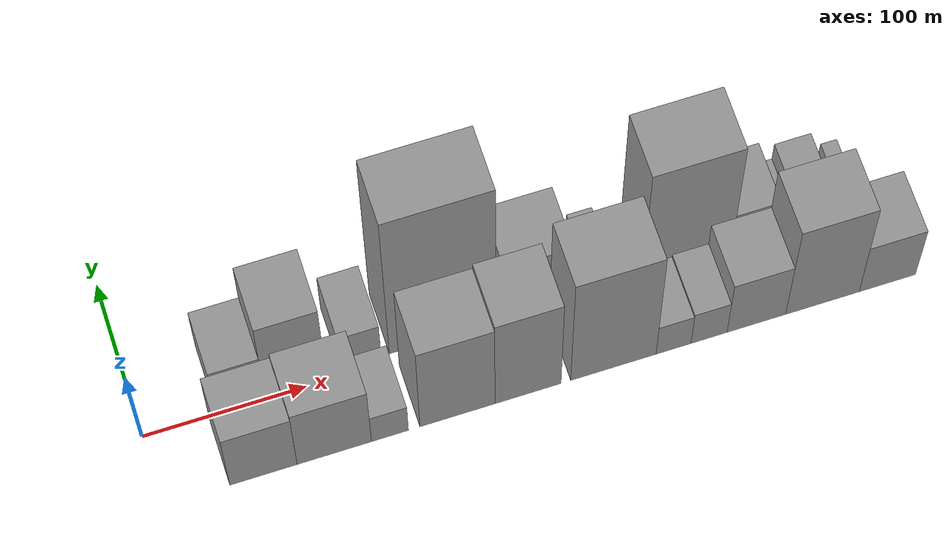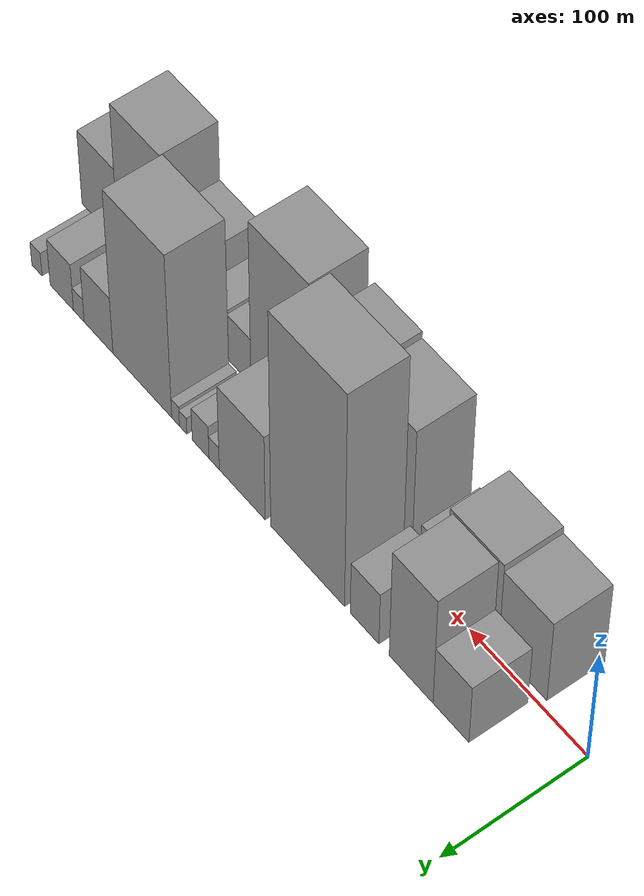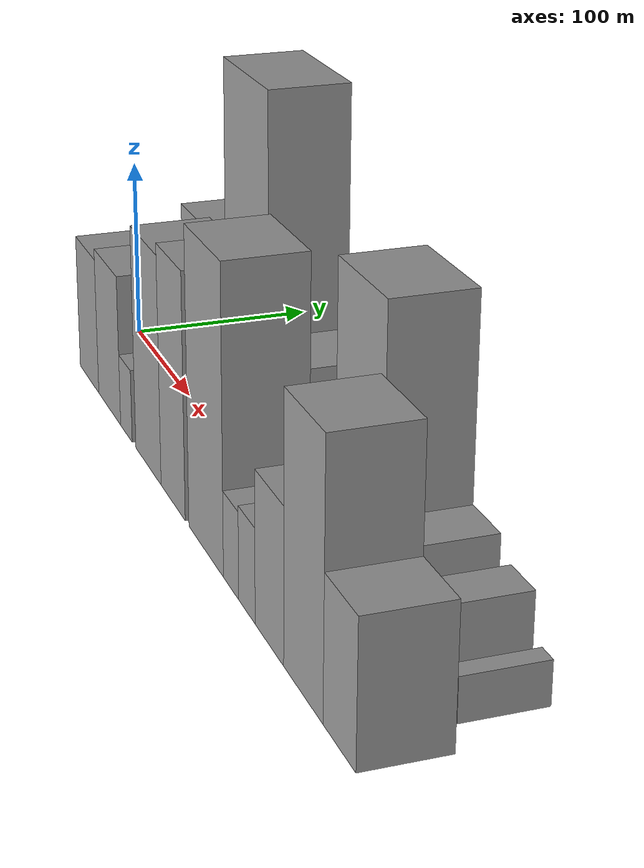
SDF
<sdf version="1.6">
 <world name="default">
  <scene>
   <sky><clouds><speed>12</speed></clouds></sky>
   <ambient>0.4 0.4 0.4 1</ambient>
   <background>0.7 0.7 0.7 1</background>
   <shadows>1</shadows>
  </scene>
  <gravity>0 0 -9.8066</gravity>
  <magnetic_field>6e-06 2.3e-05 -4.2e-05</magnetic_field>
  <physics default="0" name="default_physics" type="ode">
   <ode>
    <solver>
     <type>quick</type>
     <iters>10</iters>
     <sor>1.0</sor>
     <use_dynamic_moi_rescaling>0</use_dynamic_moi_rescaling>
    </solver>
    <constraints>
     <cfm>0</cfm>
     <erp>0.2</erp>
     <contact_max_correcting_vel>100</contact_max_correcting_vel>
     <contact_surface_layer>0.001</contact_surface_layer>
    </constraints>
   </ode>
   <max_step_size>0.004</max_step_size>
   <real_time_factor>1</real_time_factor>
   <real_time_update_rate>250</real_time_update_rate>
  </physics>
  <light name="sun" type="directional">
   <pose>0 0 10 0 0 0</pose>
   <diffuse>0.8 0.8 0.8 1</diffuse>
   <specular>0.2 0.2 0.2 1</specular>
   <attenuation>
    <range>1000</range>
    <constant>0.9</constant>
    <linear>0.01</linear>
    <quadratic>0.001</quadratic>
   </attenuation>
   <direction>-0.5 0.1 -0.9</direction>
  </light>
  <model name="building_1">
   <static>1</static>
   <pose>60.2377 24.5000 0 0.000000 0.000000 1.570796</pose>
   <link name="link">
    <pose>0 0 27.00 0 0 0</pose>
    <collision name="collision"><geometry><box><size>40.0000 30.4754 54.0000</size></box></geometry></collision>
    <visual name="visual">
     <cast_shadows>0</cast_shadows>
     <geometry><box><size>40.0000 30.4754 54.0000</size></box></geometry>
     <material>
      <script>
       <uri>model://grey_wall/materials/scripts</uri>
       <uri>model://grey_wall/materials/textures</uri>
       <name>vrc/grey_wall</name>
      </script>
     </material>
    </visual>
   </link>
  </model>
  <model name="building_2">
   <static>1</static>
   <pose>94.3330 24.5000 0 0.000000 0.000000 1.570796</pose>
   <link name="link">
    <pose>0 0 49.50 0 0 0</pose>
    <collision name="collision"><geometry><box><size>40.0000 37.7152 99.0000</size></box></geometry></collision>
    <visual name="visual">
     <cast_shadows>0</cast_shadows>
     <geometry><box><size>40.0000 37.7152 99.0000</size></box></geometry>
     <material>
      <script>
       <uri>model://grey_wall/materials/scripts</uri>
       <uri>model://grey_wall/materials/textures</uri>
       <name>vrc/grey_wall</name>
      </script>
     </material>
    </visual>
   </link>
  </model>
  <model name="building_3">
   <static>1</static>
   <pose>134.7354 24.5000 0 0.000000 0.000000 1.570796</pose>
   <link name="link">
    <pose>0 0 24.00 0 0 0</pose>
    <collision name="collision"><geometry><box><size>40.0000 25.0895 48.0000</size></box></geometry></collision>
    <visual name="visual">
     <cast_shadows>0</cast_shadows>
     <geometry><box><size>40.0000 25.0895 48.0000</size></box></geometry>
     <material>
      <script>
       <uri>model://grey_wall/materials/scripts</uri>
       <uri>model://grey_wall/materials/textures</uri>
       <name>vrc/grey_wall</name>
      </script>
     </material>
    </visual>
   </link>
  </model>
  <model name="building_4">
   <static>1</static>
   <pose>185.3391 24.5000 0 0.000000 0.000000 1.570796</pose>
   <link name="link">
    <pose>0 0 97.50 0 0 0</pose>
    <collision name="collision"><geometry><box><size>40.0000 66.1177 195.0000</size></box></geometry></collision>
    <visual name="visual">
     <cast_shadows>0</cast_shadows>
     <geometry><box><size>40.0000 66.1177 195.0000</size></box></geometry>
     <material>
      <script>
       <uri>model://grey_wall/materials/scripts</uri>
       <uri>model://grey_wall/materials/textures</uri>
       <name>vrc/grey_wall</name>
      </script>
     </material>
    </visual>
   </link>
  </model>
  <model name="building_5">
   <static>1</static>
   <pose>244.4486 24.5000 0 0.000000 0.000000 1.570796</pose>
   <link name="link">
    <pose>0 0 39.00 0 0 0</pose>
    <collision name="collision"><geometry><box><size>40.0000 42.1014 78.0000</size></box></geometry></collision>
    <visual name="visual">
     <cast_shadows>0</cast_shadows>
     <geometry><box><size>40.0000 42.1014 78.0000</size></box></geometry>
     <material>
      <script>
       <uri>model://grey_wall/materials/scripts</uri>
       <uri>model://grey_wall/materials/textures</uri>
       <name>vrc/grey_wall</name>
      </script>
     </material>
    </visual>
   </link>
  </model>
  <model name="building_6">
   <static>1</static>
   <pose>270.3058 24.5000 0 0.000000 0.000000 1.570796</pose>
   <link name="link">
    <pose>0 0 10.50 0 0 0</pose>
    <collision name="collision"><geometry><box><size>40.0000 9.6129 21.0000</size></box></geometry></collision>
    <visual name="visual">
     <cast_shadows>0</cast_shadows>
     <geometry><box><size>40.0000 9.6129 21.0000</size></box></geometry>
     <material>
      <script>
       <uri>model://grey_wall/materials/scripts</uri>
       <uri>model://grey_wall/materials/textures</uri>
       <name>vrc/grey_wall</name>
      </script>
     </material>
    </visual>
   </link>
  </model>
  <model name="building_7">
   <static>1</static>
   <pose>282.9317 24.5000 0 0.000000 0.000000 1.570796</pose>
   <link name="link">
    <pose>0 0 15.00 0 0 0</pose>
    <collision name="collision"><geometry><box><size>40.0000 15.6388 30.0000</size></box></geometry></collision>
    <visual name="visual">
     <cast_shadows>0</cast_shadows>
     <geometry><box><size>40.0000 15.6388 30.0000</size></box></geometry>
     <material>
      <script>
       <uri>model://grey_wall/materials/scripts</uri>
       <uri>model://grey_wall/materials/textures</uri>
       <name>vrc/grey_wall</name>
      </script>
     </material>
    </visual>
   </link>
  </model>
  <model name="building_8">
   <static>1</static>
   <pose>299.2666 24.5000 0 0.000000 0.000000 1.570796</pose>
   <link name="link">
    <pose>0 0 7.50 0 0 0</pose>
    <collision name="collision"><geometry><box><size>40.0000 7.0310 15.0000</size></box></geometry></collision>
    <visual name="visual">
     <cast_shadows>0</cast_shadows>
     <geometry><box><size>40.0000 7.0310 15.0000</size></box></geometry>
     <material>
      <script>
       <uri>model://grey_wall/materials/scripts</uri>
       <uri>model://grey_wall/materials/textures</uri>
       <name>vrc/grey_wall</name>
      </script>
     </material>
    </visual>
   </link>
  </model>
  <model name="building_9">
   <static>1</static>
   <pose>306.3951 24.5000 0 0.000000 0.000000 1.570796</pose>
   <link name="link">
    <pose>0 0 9.00 0 0 0</pose>
    <collision name="collision"><geometry><box><size>40.0000 7.2258 18.0000</size></box></geometry></collision>
    <visual name="visual">
     <cast_shadows>0</cast_shadows>
     <geometry><box><size>40.0000 7.2258 18.0000</size></box></geometry>
     <material>
      <script>
       <uri>model://grey_wall/materials/scripts</uri>
       <uri>model://grey_wall/materials/textures</uri>
       <name>vrc/grey_wall</name>
      </script>
     </material>
    </visual>
   </link>
  </model>
  <model name="building_10">
   <static>1</static>
   <pose>338.0191 24.5000 0 0.000000 0.000000 1.570796</pose>
   <link name="link">
    <pose>0 0 73.50 0 0 0</pose>
    <collision name="collision"><geometry><box><size>40.0000 56.0221 147.0000</size></box></geometry></collision>
    <visual name="visual">
     <cast_shadows>0</cast_shadows>
     <geometry><box><size>40.0000 56.0221 147.0000</size></box></geometry>
     <material>
      <script>
       <uri>model://grey_wall/materials/scripts</uri>
       <uri>model://grey_wall/materials/textures</uri>
       <name>vrc/grey_wall</name>
      </script>
     </material>
    </visual>
   </link>
  </model>
  <model name="building_11">
   <static>1</static>
   <pose>379.9936 24.5000 0 0.000000 0.000000 1.570796</pose>
   <link name="link">
    <pose>0 0 25.50 0 0 0</pose>
    <collision name="collision"><geometry><box><size>40.0000 27.9270 51.0000</size></box></geometry></collision>
    <visual name="visual">
     <cast_shadows>0</cast_shadows>
     <geometry><box><size>40.0000 27.9270 51.0000</size></box></geometry>
     <material>
      <script>
       <uri>model://grey_wall/materials/scripts</uri>
       <uri>model://grey_wall/materials/textures</uri>
       <name>vrc/grey_wall</name>
      </script>
     </material>
    </visual>
   </link>
  </model>
  <model name="building_12">
   <static>1</static>
   <pose>399.2017 24.5000 0 0.000000 0.000000 1.570796</pose>
   <link name="link">
    <pose>0 0 10.50 0 0 0</pose>
    <collision name="collision"><geometry><box><size>40.0000 10.4891 21.0000</size></box></geometry></collision>
    <visual name="visual">
     <cast_shadows>0</cast_shadows>
     <geometry><box><size>40.0000 10.4891 21.0000</size></box></geometry>
     <material>
      <script>
       <uri>model://grey_wall/materials/scripts</uri>
       <uri>model://grey_wall/materials/textures</uri>
       <name>vrc/grey_wall</name>
      </script>
     </material>
    </visual>
   </link>
  </model>
  <model name="building_13">
   <static>1</static>
   <pose>415.9238 24.5000 0 0.000000 0.000000 1.570796</pose>
   <link name="link">
    <pose>0 0 21.00 0 0 0</pose>
    <collision name="collision"><geometry><box><size>40.0000 22.9552 42.0000</size></box></geometry></collision>
    <visual name="visual">
     <cast_shadows>0</cast_shadows>
     <geometry><box><size>40.0000 22.9552 42.0000</size></box></geometry>
     <material>
      <script>
       <uri>model://grey_wall/materials/scripts</uri>
       <uri>model://grey_wall/materials/textures</uri>
       <name>vrc/grey_wall</name>
      </script>
     </material>
    </visual>
   </link>
  </model>
  <model name="building_14">
   <static>1</static>
   <pose>440.4947 24.5000 0 0.000000 0.000000 1.570796</pose>
   <link name="link">
    <pose>0 0 10.50 0 0 0</pose>
    <collision name="collision"><geometry><box><size>40.0000 10.1867 21.0000</size></box></geometry></collision>
    <visual name="visual">
     <cast_shadows>0</cast_shadows>
     <geometry><box><size>40.0000 10.1867 21.0000</size></box></geometry>
     <material>
      <script>
       <uri>model://grey_wall/materials/scripts</uri>
       <uri>model://grey_wall/materials/textures</uri>
       <name>vrc/grey_wall</name>
      </script>
     </material>
    </visual>
   </link>
  </model>
  <model name="building_15">
   <static>1</static>
   <pose>60.3932 -24.5000 0 0.000000 0.000000 1.570796</pose>
   <link name="link">
    <pose>0 0 37.50 0 0 0</pose>
    <collision name="collision"><geometry><box><size>40.0000 40.7864 75.0000</size></box></geometry></collision>
    <visual name="visual">
     <cast_shadows>0</cast_shadows>
     <geometry><box><size>40.0000 40.7864 75.0000</size></box></geometry>
     <material>
      <script>
       <uri>model://grey_wall/materials/scripts</uri>
       <uri>model://grey_wall/materials/textures</uri>
       <name>vrc/grey_wall</name>
      </script>
     </material>
    </visual>
   </link>
  </model>
  <model name="building_16">
   <static>1</static>
   <pose>103.4413 -24.5000 0 0.000000 0.000000 1.570796</pose>
   <link name="link">
    <pose>0 0 40.50 0 0 0</pose>
    <collision name="collision"><geometry><box><size>40.0000 45.3098 81.0000</size></box></geometry></collision>
    <visual name="visual">
     <cast_shadows>0</cast_shadows>
     <geometry><box><size>40.0000 45.3098 81.0000</size></box></geometry>
     <material>
      <script>
       <uri>model://grey_wall/materials/scripts</uri>
       <uri>model://grey_wall/materials/textures</uri>
       <name>vrc/grey_wall</name>
      </script>
     </material>
    </visual>
   </link>
  </model>
  <model name="building_17">
   <static>1</static>
   <pose>137.3759 -24.5000 0 0.000000 0.000000 1.570796</pose>
   <link name="link">
    <pose>0 0 19.50 0 0 0</pose>
    <collision name="collision"><geometry><box><size>40.0000 22.5594 39.0000</size></box></geometry></collision>
    <visual name="visual">
     <cast_shadows>0</cast_shadows>
     <geometry><box><size>40.0000 22.5594 39.0000</size></box></geometry>
     <material>
      <script>
       <uri>model://grey_wall/materials/scripts</uri>
       <uri>model://grey_wall/materials/textures</uri>
       <name>vrc/grey_wall</name>
      </script>
     </material>
    </visual>
   </link>
  </model>
  <model name="building_18">
   <static>1</static>
   <pose>178.7243 -24.5000 0 0.000000 0.000000 1.570796</pose>
   <link name="link">
    <pose>0 0 58.50 0 0 0</pose>
    <collision name="collision"><geometry><box><size>40.0000 46.1374 117.0000</size></box></geometry></collision>
    <visual name="visual">
     <cast_shadows>0</cast_shadows>
     <geometry><box><size>40.0000 46.1374 117.0000</size></box></geometry>
     <material>
      <script>
       <uri>model://grey_wall/materials/scripts</uri>
       <uri>model://grey_wall/materials/textures</uri>
       <name>vrc/grey_wall</name>
      </script>
     </material>
    </visual>
   </link>
  </model>
  <model name="building_19">
   <static>1</static>
   <pose>222.1818 -24.5000 0 0.000000 0.000000 1.570796</pose>
   <link name="link">
    <pose>0 0 61.50 0 0 0</pose>
    <collision name="collision"><geometry><box><size>40.0000 40.7775 123.0000</size></box></geometry></collision>
    <visual name="visual">
     <cast_shadows>0</cast_shadows>
     <geometry><box><size>40.0000 40.7775 123.0000</size></box></geometry>
     <material>
      <script>
       <uri>model://grey_wall/materials/scripts</uri>
       <uri>model://grey_wall/materials/textures</uri>
       <name>vrc/grey_wall</name>
      </script>
     </material>
    </visual>
   </link>
  </model>
  <model name="building_20">
   <static>1</static>
   <pose>275.0871 -24.5000 0 0.000000 0.000000 1.570796</pose>
   <link name="link">
    <pose>0 0 73.50 0 0 0</pose>
    <collision name="collision"><geometry><box><size>40.0000 53.0330 147.0000</size></box></geometry></collision>
    <visual name="visual">
     <cast_shadows>0</cast_shadows>
     <geometry><box><size>40.0000 53.0330 147.0000</size></box></geometry>
     <material>
      <script>
       <uri>model://grey_wall/materials/scripts</uri>
       <uri>model://grey_wall/materials/textures</uri>
       <name>vrc/grey_wall</name>
      </script>
     </material>
    </visual>
   </link>
  </model>
  <model name="building_21">
   <static>1</static>
   <pose>312.4936 -24.5000 0 0.000000 0.000000 1.570796</pose>
   <link name="link">
    <pose>0 0 21.00 0 0 0</pose>
    <collision name="collision"><geometry><box><size>40.0000 21.7801 42.0000</size></box></geometry></collision>
    <visual name="visual">
     <cast_shadows>0</cast_shadows>
     <geometry><box><size>40.0000 21.7801 42.0000</size></box></geometry>
     <material>
      <script>
       <uri>model://grey_wall/materials/scripts</uri>
       <uri>model://grey_wall/materials/textures</uri>
       <name>vrc/grey_wall</name>
      </script>
     </material>
    </visual>
   </link>
  </model>
  <model name="building_22">
   <static>1</static>
   <pose>334.6369 -24.5000 0 0.000000 0.000000 1.570796</pose>
   <link name="link">
    <pose>0 0 22.50 0 0 0</pose>
    <collision name="collision"><geometry><box><size>40.0000 22.5064 45.0000</size></box></geometry></collision>
    <visual name="visual">
     <cast_shadows>0</cast_shadows>
     <geometry><box><size>40.0000 22.5064 45.0000</size></box></geometry>
     <material>
      <script>
       <uri>model://grey_wall/materials/scripts</uri>
       <uri>model://grey_wall/materials/textures</uri>
       <name>vrc/grey_wall</name>
      </script>
     </material>
    </visual>
   </link>
  </model>
  <model name="building_23">
   <static>1</static>
   <pose>364.2754 -24.5000 0 0.000000 0.000000 1.570796</pose>
   <link name="link">
    <pose>0 0 36.00 0 0 0</pose>
    <collision name="collision"><geometry><box><size>40.0000 36.7706 72.0000</size></box></geometry></collision>
    <visual name="visual">
     <cast_shadows>0</cast_shadows>
     <geometry><box><size>40.0000 36.7706 72.0000</size></box></geometry>
     <material>
      <script>
       <uri>model://grey_wall/materials/scripts</uri>
       <uri>model://grey_wall/materials/textures</uri>
       <name>vrc/grey_wall</name>
      </script>
     </material>
    </visual>
   </link>
  </model>
  <model name="building_24">
   <static>1</static>
   <pose>405.8916 -24.5000 0 0.000000 0.000000 1.570796</pose>
   <link name="link">
    <pose>0 0 61.50 0 0 0</pose>
    <collision name="collision"><geometry><box><size>40.0000 46.4619 123.0000</size></box></geometry></collision>
    <visual name="visual">
     <cast_shadows>0</cast_shadows>
     <geometry><box><size>40.0000 46.4619 123.0000</size></box></geometry>
     <material>
      <script>
       <uri>model://grey_wall/materials/scripts</uri>
       <uri>model://grey_wall/materials/textures</uri>
       <name>vrc/grey_wall</name>
      </script>
     </material>
    </visual>
   </link>
  </model>
  <model name="building_25">
   <static>1</static>
   <pose>446.9396 -24.5000 0 0.000000 0.000000 1.570796</pose>
   <link name="link">
    <pose>0 0 33.00 0 0 0</pose>
    <collision name="collision"><geometry><box><size>40.0000 35.6342 66.0000</size></box></geometry></collision>
    <visual name="visual">
     <cast_shadows>0</cast_shadows>
     <geometry><box><size>40.0000 35.6342 66.0000</size></box></geometry>
     <material>
      <script>
       <uri>model://grey_wall/materials/scripts</uri>
       <uri>model://grey_wall/materials/textures</uri>
       <name>vrc/grey_wall</name>
      </script>
     </material>
    </visual>
   </link>
  </model>
 </world>
</sdf>
